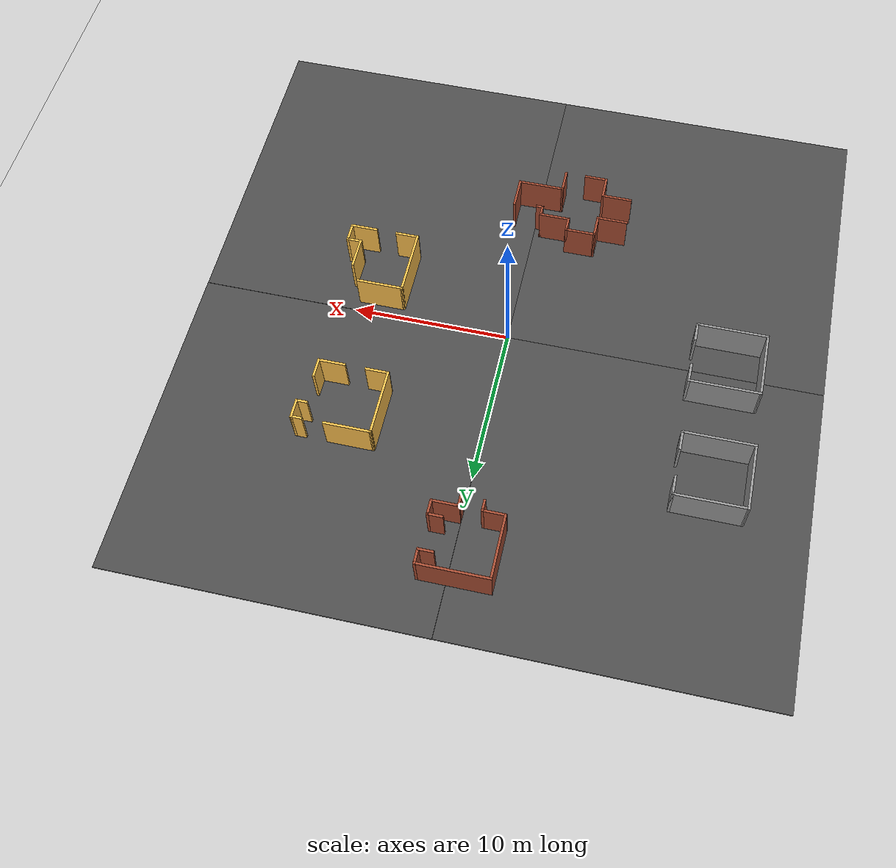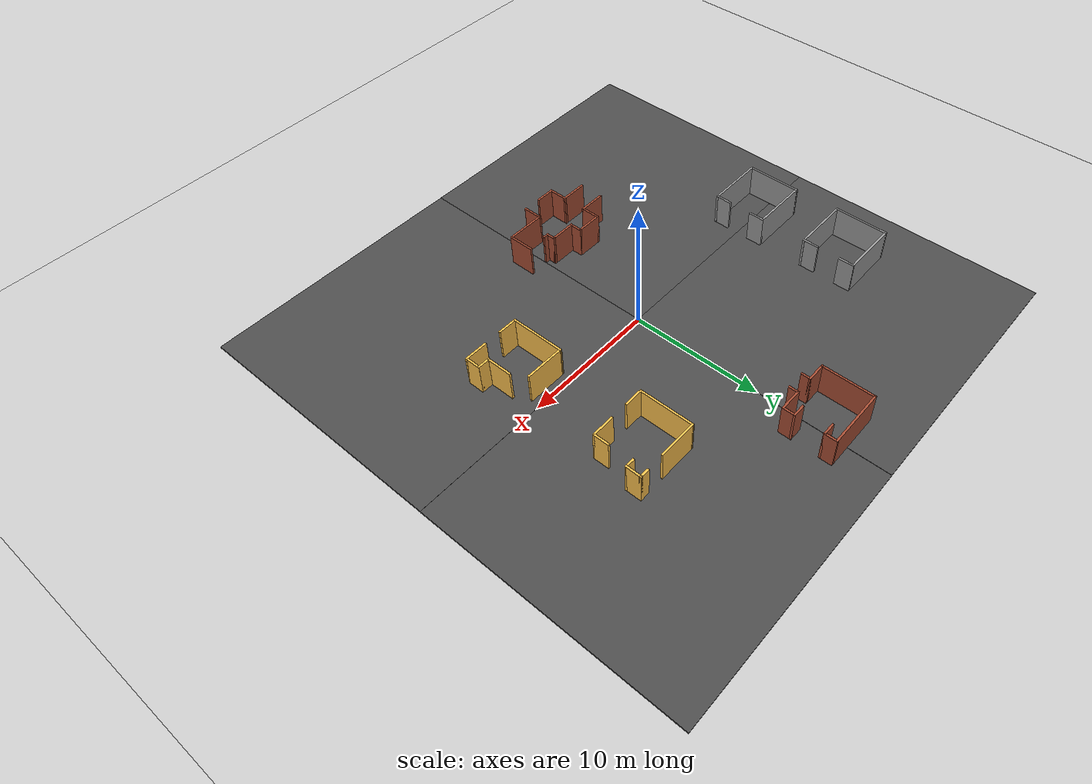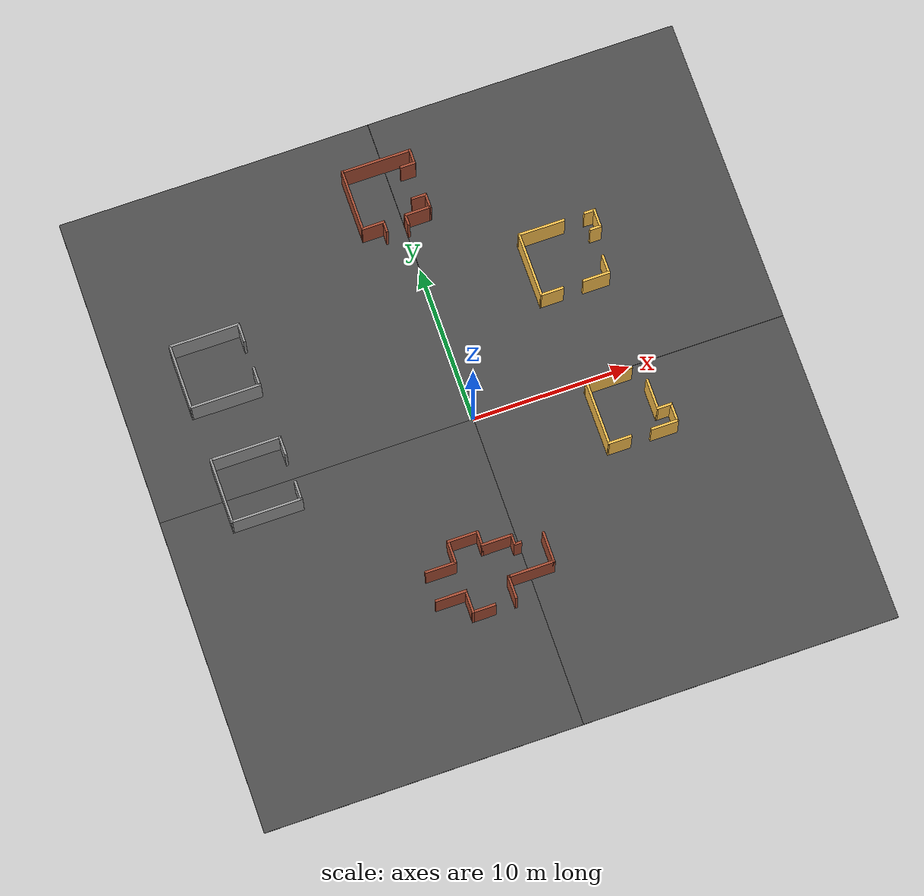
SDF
<sdf version="1.7">
 <world name="test_world">
  <light name="sun" type="directional">
   <pose>0 0 10 0 -0 0</pose>
   <diffuse>0.8 0.8 0.8 1</diffuse>
   <specular>0.2 0.2 0.2 1</specular>
   <attenuation>
    <range>1000</range>
    <constant>0.9</constant>
    <linear>0.01</linear>
    <quadratic>0.001</quadratic>
   </attenuation>
   <direction>-0.5 0.1 -0.9</direction>
   <spot><inner_angle>0</inner_angle><outer_angle>0</outer_angle><falloff>0</falloff></spot>
  </light>
  <model name="ground_plane">
   <static>1</static>
   <link name="link">
    <collision name="collision">
     <geometry><plane><normal>0 0 1</normal><size>100 100</size></plane></geometry>
     <surface>
      <contact><collide_bitmask>65535</collide_bitmask></contact>
      <friction><ode><mu>100</mu><mu2>50</mu2></ode></friction>
     </surface>
    </collision>
    <visual name="visual">
     <cast_shadows>0</cast_shadows>
     <geometry><plane><normal>0 0 1</normal><size>100 100</size></plane></geometry>
     <material>
      <script><uri>file://media/materials/scripts/gazebo.material</uri><name>Gazebo/Grey</name></script>
     </material>
    </visual>
   </link>
  </model>
  <gravity>0 0 -9.8</gravity>
  <magnetic_field>6e-06 2.3e-05 -4.2e-05</magnetic_field>
  <atmosphere type="adiabatic"/>
  <physics type="ode">
   <max_step_size>0.001</max_step_size>
   <real_time_factor>1</real_time_factor>
   <real_time_update_rate>1000</real_time_update_rate>
  </physics>
  <scene><ambient>0.4 0.4 0.4 1</ambient><background>0.7 0.7 0.7 1</background><shadows>1</shadows></scene>
  <spherical_coordinates>
   <surface_model>EARTH_WGS84</surface_model>
   <latitude_deg>0</latitude_deg>
   <longitude_deg>0</longitude_deg>
   <elevation>0</elevation>
   <heading_deg>0</heading_deg>
  </spherical_coordinates>
  <model name="asphalt_plane">
   <static>1</static>
   <link name="link">
    <collision name="collision"><geometry><box><size>20 20 0.1</size></box></geometry></collision>
    <visual name="visual">
     <cast_shadows>0</cast_shadows>
     <geometry><box><size>20 20 0.1</size></box></geometry>
     <material>
      <script>
       <uri>model://asphalt_plane/materials/scripts</uri>
       <uri>model://asphalt_plane/materials/textures</uri>
       <name>vrc/asphalt</name>
      </script>
     </material>
    </visual>
   </link>
   <pose>10.0094 10.0076 0 0 -0 0</pose>
  </model>
  <model name="asphalt_plane_clone">
   <static>1</static>
   <link name="link">
    <collision name="collision"><geometry><box><size>20 20 0.1</size></box></geometry></collision>
    <visual name="visual">
     <cast_shadows>0</cast_shadows>
     <geometry><box><size>20 20 0.1</size></box></geometry>
     <material>
      <script>
       <uri>model://asphalt_plane/materials/scripts</uri>
       <uri>model://asphalt_plane/materials/textures</uri>
       <name>vrc/asphalt</name>
      </script>
     </material>
    </visual>
   </link>
   <pose>10 -10 0 0 -0 0</pose>
  </model>
  <model name="asphalt_plane_clone_0">
   <static>1</static>
   <link name="link">
    <collision name="collision"><geometry><box><size>20 20 0.1</size></box></geometry></collision>
    <visual name="visual">
     <cast_shadows>0</cast_shadows>
     <geometry><box><size>20 20 0.1</size></box></geometry>
     <material>
      <script>
       <uri>model://asphalt_plane/materials/scripts</uri>
       <uri>model://asphalt_plane/materials/textures</uri>
       <name>vrc/asphalt</name>
      </script>
     </material>
    </visual>
   </link>
   <pose>-10 -10 0 0 -0 0</pose>
  </model>
  <model name="asphalt_plane_clone_1">
   <static>1</static>
   <link name="link">
    <collision name="collision"><geometry><box><size>20 20 0.1</size></box></geometry></collision>
    <visual name="visual">
     <cast_shadows>0</cast_shadows>
     <geometry><box><size>20 20 0.1</size></box></geometry>
     <material>
      <script>
       <uri>model://asphalt_plane/materials/scripts</uri>
       <uri>model://asphalt_plane/materials/textures</uri>
       <name>vrc/asphalt</name>
      </script>
     </material>
    </visual>
   </link>
   <pose>-10 10 0 0 -0 0</pose>
  </model>
  <model name="Test_building04">
   <pose>-2.29237 -9.62343 0 0 -0 0</pose>
   <link name="Wall_43">
    <collision name="Wall_43_Collision">
     <geometry><box><size>1.5 0.15 2.5</size></box></geometry>
     <pose>0 0 1.25 0 -0 0</pose>
    </collision>
    <visual name="Wall_43_Visual">
     <pose>0 0 1.25 0 -0 0</pose>
     <geometry><box><size>1.5 0.15 2.5</size></box></geometry>
     <material>
      <script><uri>file://media/materials/scripts/gazebo.material</uri><name>Gazebo/Bricks</name></script>
      <ambient>1 1 1 1</ambient>
     </material>
     <meta><layer>0</layer></meta>
    </visual>
    <pose>-1.175 -2.275 0 0 -0 0</pose>
   </link>
   <link name="Wall_45">
    <collision name="Wall_45_Collision">
     <geometry><box><size>1.5 0.15 2.5</size></box></geometry>
     <pose>0 0 1.25 0 -0 0</pose>
    </collision>
    <visual name="Wall_45_Visual">
     <pose>0 0 1.25 0 -0 0</pose>
     <geometry><box><size>1.5 0.15 2.5</size></box></geometry>
     <material>
      <script><uri>file://media/materials/scripts/gazebo.material</uri><name>Gazebo/Bricks</name></script>
      <ambient>1 1 1 1</ambient>
     </material>
     <meta><layer>0</layer></meta>
    </visual>
    <pose>-1.85 -1.6 0 0 -0 1.5708</pose>
   </link>
   <link name="Wall_47">
    <collision name="Wall_47_Collision">
     <geometry><box><size>1.5 0.15 2.5</size></box></geometry>
     <pose>0 0 1.25 0 -0 0</pose>
    </collision>
    <visual name="Wall_47_Visual">
     <pose>0 0 1.25 0 -0 0</pose>
     <geometry><box><size>1.5 0.15 2.5</size></box></geometry>
     <material>
      <script><uri>file://media/materials/scripts/gazebo.material</uri><name>Gazebo/Bricks</name></script>
      <ambient>1 1 1 1</ambient>
     </material>
     <meta><layer>0</layer></meta>
    </visual>
    <pose>-1.85 1.6 0 0 -0 1.5708</pose>
   </link>
   <link name="Wall_48">
    <collision name="Wall_48_Collision">
     <geometry><box><size>2 0.15 2.5</size></box></geometry>
     <pose>0 0 1.25 0 -0 0</pose>
    </collision>
    <visual name="Wall_48_Visual">
     <pose>0 0 1.25 0 -0 0</pose>
     <geometry><box><size>2 0.15 2.5</size></box></geometry>
     <material>
      <script><uri>file://media/materials/scripts/gazebo.material</uri><name>Gazebo/Bricks</name></script>
      <ambient>1 1 1 1</ambient>
     </material>
     <meta><layer>0</layer></meta>
    </visual>
    <pose>-0.925 2.275 0 0 -0 0</pose>
   </link>
   <link name="Wall_49">
    <collision name="Wall_49_Collision">
     <geometry><box><size>1 0.15 2.5</size></box></geometry>
     <pose>0 0 1.25 0 -0 0</pose>
    </collision>
    <visual name="Wall_49_Visual">
     <pose>0 0 1.25 0 -0 0</pose>
     <geometry><box><size>1 0.15 2.5</size></box></geometry>
     <material>
      <script><uri>file://media/materials/scripts/gazebo.material</uri><name>Gazebo/Bricks</name></script>
      <ambient>1 1 1 1</ambient>
     </material>
     <meta><layer>0</layer></meta>
    </visual>
    <pose>-0 1.85 0 0 -0 -1.5708</pose>
   </link>
   <link name="Wall_51">
    <collision name="Wall_51_Collision">
     <geometry><box><size>0.75 0.15 2.5</size></box></geometry>
     <pose>0 0 1.25 0 -0 0</pose>
    </collision>
    <visual name="Wall_51_Visual">
     <pose>0 0 1.25 0 -0 0</pose>
     <geometry><box><size>0.75 0.15 2.5</size></box></geometry>
     <material>
      <script><uri>file://media/materials/scripts/gazebo.material</uri><name>Gazebo/Bricks</name></script>
      <ambient>1 1 1 1</ambient>
     </material>
     <meta><layer>0</layer></meta>
    </visual>
    <pose>1.85 1.125 0 0 -0 -1.5708</pose>
   </link>
   <link name="Wall_54">
    <collision name="Wall_54_Collision">
     <geometry><box><size>1.5 0.15 2.5</size></box></geometry>
     <pose>0 0 1.25 0 -0 0</pose>
    </collision>
    <visual name="Wall_54_Visual">
     <pose>0 0 1.25 0 -0 0</pose>
     <geometry><box><size>1.5 0.15 2.5</size></box></geometry>
     <material>
      <script><uri>file://media/materials/scripts/gazebo.material</uri><name>Gazebo/Bricks</name></script>
      <ambient>1 1 1 1</ambient>
     </material>
     <meta><layer>0</layer></meta>
    </visual>
    <pose>0.85 -1.6 0 0 -0 1.5708</pose>
   </link>
   <link name="Wall_55">
    <collision name="Wall_55_Collision">
     <geometry><box><size>3 0.15 2.5</size></box></geometry>
     <pose>0 0 1.25 0 -0 0</pose>
    </collision>
    <visual name="Wall_55_Visual">
     <pose>0 0 1.25 0 -0 0</pose>
     <geometry><box><size>3 0.15 2.5</size></box></geometry>
     <material>
      <script><uri>file://media/materials/scripts/gazebo.material</uri><name>Gazebo/Bricks</name></script>
      <ambient>1 1 1 1</ambient>
     </material>
     <meta><layer>0</layer></meta>
    </visual>
    <pose>2.275 -0.925 0 0 -0 0</pose>
   </link>
   <link name="Wall_56">
    <collision name="Wall_56_Collision">
     <geometry><box><size>2 0.15 2.5</size></box></geometry>
     <pose>0 0 1.25 0 -0 0</pose>
    </collision>
    <visual name="Wall_56_Visual">
     <pose>0 0 1.25 0 -0 0</pose>
     <geometry><box><size>2 0.15 2.5</size></box></geometry>
     <material>
      <script><uri>file://media/materials/scripts/gazebo.material</uri><name>Gazebo/Bricks</name></script>
      <ambient>1 1 1 1</ambient>
     </material>
     <meta><layer>0</layer></meta>
    </visual>
    <pose>3.7 0 0 0 -0 1.5708</pose>
   </link>
   <link name="Wall_58">
    <collision name="Wall_58_Collision">
     <geometry><box><size>2 0.15 2.5</size></box></geometry>
     <pose>0 0 1.25 0 -0 0</pose>
    </collision>
    <visual name="Wall_58_Visual">
     <pose>0 0 1.25 0 -0 0</pose>
     <geometry><box><size>2 0.15 2.5</size></box></geometry>
     <material>
      <script><uri>file://media/materials/scripts/gazebo.material</uri><name>Gazebo/Bricks</name></script>
      <ambient>1 1 1 1</ambient>
     </material>
     <meta><layer>0</layer></meta>
    </visual>
    <pose>0.925 1.425 0 0 -0 0</pose>
   </link>
   <link name="Wall_60">
    <collision name="Wall_60_Collision">
     <geometry><box><size>0.5 0.15 2.5</size></box></geometry>
     <pose>0 0 1.25 0 -0 0</pose>
    </collision>
    <visual name="Wall_60_Visual">
     <pose>0 0 1.25 0 -0 0</pose>
     <geometry><box><size>0.5 0.15 2.5</size></box></geometry>
     <material>
      <script><uri>file://media/materials/scripts/gazebo.material</uri><name>Gazebo/Bricks</name></script>
      <ambient>1 1 1 1</ambient>
     </material>
     <meta><layer>0</layer></meta>
    </visual>
    <pose>2.025 0.825 0 0 -0 0</pose>
   </link>
   <link name="Wall_62">
    <collision name="Wall_62_Collision">
     <geometry><box><size>2 0.15 2.5</size></box></geometry>
     <pose>0 0 1.25 0 -0 0</pose>
    </collision>
    <visual name="Wall_62_Visual">
     <pose>0 0 1.25 0 -0 0</pose>
     <geometry><box><size>2 0.15 2.5</size></box></geometry>
     <material>
      <script><uri>file://media/materials/scripts/gazebo.material</uri><name>Gazebo/Bricks</name></script>
      <ambient>1 1 1 1</ambient>
     </material>
     <meta><layer>0</layer></meta>
    </visual>
    <pose>-2.775 0.925 0 0 -0 3.14159</pose>
   </link>
   <link name="Wall_64">
    <collision name="Wall_64_Collision">
     <geometry><box><size>2 0.15 2.5</size></box></geometry>
     <pose>0 0 1.25 0 -0 0</pose>
    </collision>
    <visual name="Wall_64_Visual">
     <pose>0 0 1.25 0 -0 0</pose>
     <geometry><box><size>2 0.15 2.5</size></box></geometry>
     <material>
      <script><uri>file://media/materials/scripts/gazebo.material</uri><name>Gazebo/Bricks</name></script>
      <ambient>1 1 1 1</ambient>
     </material>
     <meta><layer>0</layer></meta>
    </visual>
    <pose>-2.775 -0.925 0 0 -0 3.14159</pose>
   </link>
   <static>1</static>
  </model>
  <model name="Test_building00">
   <pose>-13.3894 7.60251 0 0 -0 0</pose>
   <link name="Wall_10">
    <collision name="Wall_10_Collision">
     <geometry><box><size>0.16 0.15 2.5</size></box></geometry>
     <pose>0 0 1.25 0 -0 0</pose>
    </collision>
    <visual name="Wall_10_Visual">
     <pose>0 0 1.25 0 -0 0</pose>
     <geometry><box><size>0.16 0.15 2.5</size></box></geometry>
     <material>
      <script><uri>file://media/materials/scripts/gazebo.material</uri><name>Gazebo/Grey</name></script>
      <ambient>1 1 1 1</ambient>
     </material>
     <meta><layer>0</layer></meta>
    </visual>
    <pose>1.69422 -2.025 0 0 -0 0</pose>
   </link>
   <link name="Wall_11">
    <collision name="Wall_11_Collision">
     <geometry><box><size>4.5 0.15 2.5</size></box></geometry>
     <pose>0 0 1.25 0 -0 0</pose>
    </collision>
    <visual name="Wall_11_Visual">
     <pose>0 0 1.25 0 -0 0</pose>
     <geometry><box><size>4.5 0.15 2.5</size></box></geometry>
     <material>
      <script><uri>file://media/materials/scripts/gazebo.material</uri><name>Gazebo/Grey</name></script>
      <ambient>1 1 1 1</ambient>
     </material>
     <meta><layer>0</layer></meta>
    </visual>
    <pose>-0.475782 -2.025 0 0 -0 3.14159</pose>
   </link>
   <link name="Wall_12">
    <collision name="Wall_12_Collision">
     <geometry><box><size>4.20001 0.15 2.5</size></box></geometry>
     <pose>0 0 1.25 0 -0 0</pose>
    </collision>
    <visual name="Wall_12_Visual">
     <pose>0 0 1.25 0 -0 0</pose>
     <geometry><box><size>4.20001 0.15 2.5</size></box></geometry>
     <material>
      <script><uri>file://media/materials/scripts/gazebo.material</uri><name>Gazebo/Grey</name></script>
      <ambient>1 1 1 1</ambient>
     </material>
     <meta><layer>0</layer></meta>
    </visual>
    <pose>-2.65578 -0 0 0 -0 1.57326</pose>
   </link>
   <link name="Wall_5">
    <collision name="Wall_5_Collision">
     <geometry><box><size>4.5 0.15 2.5</size></box></geometry>
     <pose>0 0 1.25 0 -0 0</pose>
    </collision>
    <visual name="Wall_5_Visual">
     <pose>0 0 1.25 0 -0 0</pose>
     <geometry><box><size>4.5 0.15 2.5</size></box></geometry>
     <material>
      <script><uri>file://media/materials/scripts/gazebo.material</uri><name>Gazebo/Grey</name></script>
      <ambient>1 1 1 1</ambient>
     </material>
     <meta><layer>0</layer></meta>
    </visual>
    <pose>-0.485782 2.025 0 0 -0 0</pose>
   </link>
   <link name="Wall_6">
    <collision name="Wall_6_Collision">
     <geometry><box><size>1.25 0.15 2.5</size></box></geometry>
     <pose>0 0 1.25 0 -0 0</pose>
    </collision>
    <visual name="Wall_6_Visual">
     <pose>0 0 1.25 0 -0 0</pose>
     <geometry><box><size>1.25 0.15 2.5</size></box></geometry>
     <material>
      <script><uri>file://media/materials/scripts/gazebo.material</uri><name>Gazebo/Grey</name></script>
      <ambient>1 1 1 1</ambient>
     </material>
     <meta><layer>0</layer></meta>
    </visual>
    <pose>1.68922 1.475 0 0 -0 -1.5708</pose>
   </link>
   <link name="Wall_9">
    <collision name="Wall_9_Collision">
     <geometry><box><size>1.25 0.15 2.5</size></box></geometry>
     <pose>0 0 1.25 0 -0 0</pose>
    </collision>
    <visual name="Wall_9_Visual">
     <pose>0 0 1.25 0 -0 0</pose>
     <geometry><box><size>1.25 0.15 2.5</size></box></geometry>
     <material>
      <script><uri>file://media/materials/scripts/gazebo.material</uri><name>Gazebo/Grey</name></script>
      <ambient>1 1 1 1</ambient>
     </material>
     <meta><layer>0</layer></meta>
    </visual>
    <pose>1.68922 -1.475 0 0 -0 -1.5708</pose>
   </link>
   <static>1</static>
  </model>
  <model name="Test_building00_0">
   <pose>-13.2702 0.050698 0 0 -0 0</pose>
   <link name="Wall_10">
    <collision name="Wall_10_Collision">
     <geometry><box><size>0.16 0.15 2.5</size></box></geometry>
     <pose>0 0 1.25 0 -0 0</pose>
    </collision>
    <visual name="Wall_10_Visual">
     <pose>0 0 1.25 0 -0 0</pose>
     <geometry><box><size>0.16 0.15 2.5</size></box></geometry>
     <material>
      <script><uri>file://media/materials/scripts/gazebo.material</uri><name>Gazebo/Grey</name></script>
      <ambient>1 1 1 1</ambient>
     </material>
     <meta><layer>0</layer></meta>
    </visual>
    <pose>1.69422 -2.025 0 0 -0 0</pose>
   </link>
   <link name="Wall_11">
    <collision name="Wall_11_Collision">
     <geometry><box><size>4.5 0.15 2.5</size></box></geometry>
     <pose>0 0 1.25 0 -0 0</pose>
    </collision>
    <visual name="Wall_11_Visual">
     <pose>0 0 1.25 0 -0 0</pose>
     <geometry><box><size>4.5 0.15 2.5</size></box></geometry>
     <material>
      <script><uri>file://media/materials/scripts/gazebo.material</uri><name>Gazebo/Grey</name></script>
      <ambient>1 1 1 1</ambient>
     </material>
     <meta><layer>0</layer></meta>
    </visual>
    <pose>-0.475782 -2.025 0 0 -0 3.14159</pose>
   </link>
   <link name="Wall_12">
    <collision name="Wall_12_Collision">
     <geometry><box><size>4.20001 0.15 2.5</size></box></geometry>
     <pose>0 0 1.25 0 -0 0</pose>
    </collision>
    <visual name="Wall_12_Visual">
     <pose>0 0 1.25 0 -0 0</pose>
     <geometry><box><size>4.20001 0.15 2.5</size></box></geometry>
     <material>
      <script><uri>file://media/materials/scripts/gazebo.material</uri><name>Gazebo/Grey</name></script>
      <ambient>1 1 1 1</ambient>
     </material>
     <meta><layer>0</layer></meta>
    </visual>
    <pose>-2.65578 -0 0 0 -0 1.57326</pose>
   </link>
   <link name="Wall_5">
    <collision name="Wall_5_Collision">
     <geometry><box><size>4.5 0.15 2.5</size></box></geometry>
     <pose>0 0 1.25 0 -0 0</pose>
    </collision>
    <visual name="Wall_5_Visual">
     <pose>0 0 1.25 0 -0 0</pose>
     <geometry><box><size>4.5 0.15 2.5</size></box></geometry>
     <material>
      <script><uri>file://media/materials/scripts/gazebo.material</uri><name>Gazebo/Grey</name></script>
      <ambient>1 1 1 1</ambient>
     </material>
     <meta><layer>0</layer></meta>
    </visual>
    <pose>-0.485782 2.025 0 0 -0 0</pose>
   </link>
   <link name="Wall_6">
    <collision name="Wall_6_Collision">
     <geometry><box><size>1.25 0.15 2.5</size></box></geometry>
     <pose>0 0 1.25 0 -0 0</pose>
    </collision>
    <visual name="Wall_6_Visual">
     <pose>0 0 1.25 0 -0 0</pose>
     <geometry><box><size>1.25 0.15 2.5</size></box></geometry>
     <material>
      <script><uri>file://media/materials/scripts/gazebo.material</uri><name>Gazebo/Grey</name></script>
      <ambient>1 1 1 1</ambient>
     </material>
     <meta><layer>0</layer></meta>
    </visual>
    <pose>1.68922 1.475 0 0 -0 -1.5708</pose>
   </link>
   <link name="Wall_9">
    <collision name="Wall_9_Collision">
     <geometry><box><size>1.25 0.15 2.5</size></box></geometry>
     <pose>0 0 1.25 0 -0 0</pose>
    </collision>
    <visual name="Wall_9_Visual">
     <pose>0 0 1.25 0 -0 0</pose>
     <geometry><box><size>1.25 0.15 2.5</size></box></geometry>
     <material>
      <script><uri>file://media/materials/scripts/gazebo.material</uri><name>Gazebo/Grey</name></script>
      <ambient>1 1 1 1</ambient>
     </material>
     <meta><layer>0</layer></meta>
    </visual>
    <pose>1.68922 -1.475 0 0 -0 -1.5708</pose>
   </link>
   <static>1</static>
  </model>
  <model name="Test_building03">
   <pose>-0.007442 14.5328 0 0 -0 0</pose>
   <link name="Wall_12">
    <collision name="Wall_12_Collision">
     <geometry><box><size>4 0.15 2.5</size></box></geometry>
     <pose>0 0 1.25 0 -0 0</pose>
    </collision>
    <visual name="Wall_12_Visual">
     <pose>0 0 1.25 0 -0 0</pose>
     <geometry><box><size>4 0.15 2.5</size></box></geometry>
     <material>
      <script><uri>file://media/materials/scripts/gazebo.material</uri><name>Gazebo/Bricks</name></script>
      <ambient>1 0.764706 0.305882 1</ambient>
     </material>
     <meta><layer>0</layer></meta>
    </visual>
    <pose>-2.65587 0.3 0 0 -0 1.5708</pose>
   </link>
   <link name="Wall_14">
    <collision name="Wall_14_Collision">
     <geometry><box><size>1.5 0.15 2.5</size></box></geometry>
     <pose>0 0 1.25 0 -0 0</pose>
    </collision>
    <visual name="Wall_14_Visual">
     <pose>0 0 1.25 0 -0 0</pose>
     <geometry><box><size>1.5 0.15 2.5</size></box></geometry>
     <material>
      <script><uri>file://media/materials/scripts/gazebo.material</uri><name>Gazebo/Bricks</name></script>
      <ambient>1 0.764706 0.305882 1</ambient>
     </material>
     <meta><layer>0</layer></meta>
    </visual>
    <pose>-1.98087 -1.625 0 0 -0 0</pose>
   </link>
   <link name="Wall_18">
    <collision name="Wall_18_Collision">
     <geometry><box><size>1.75 0.15 2.5</size></box></geometry>
     <pose>0 0 1.25 0 -0 0</pose>
    </collision>
    <visual name="Wall_18_Visual">
     <pose>0 0 1.25 0 -0 0</pose>
     <geometry><box><size>1.75 0.15 2.5</size></box></geometry>
     <material>
      <script><uri>file://media/materials/scripts/gazebo.material</uri><name>Gazebo/Bricks</name></script>
      <ambient>1 0.764706 0.305882 1</ambient>
     </material>
     <meta><layer>0</layer></meta>
    </visual>
    <pose>0.884126 -1.625 0 0 -0 3.14159</pose>
   </link>
   <link name="Wall_24">
    <collision name="Wall_24_Collision">
     <geometry><box><size>4.5 0.15 2.5</size></box></geometry>
     <pose>0 0 1.25 0 -0 0</pose>
    </collision>
    <visual name="Wall_24_Visual">
     <pose>0 0 1.25 0 -0 0</pose>
     <geometry><box><size>4.5 0.15 2.5</size></box></geometry>
     <material>
      <script><uri>file://media/materials/scripts/gazebo.material</uri><name>Gazebo/Bricks</name></script>
      <ambient>1 0.764706 0.305882 1</ambient>
     </material>
     <meta><layer>0</layer></meta>
    </visual>
    <pose>-0.480874 2.225 0 0 -0 3.14159</pose>
   </link>
   <link name="Wall_31">
    <collision name="Wall_31_Collision">
     <geometry><box><size>1 0.15 2.5</size></box></geometry>
     <pose>0 0 1.25 0 -0 0</pose>
    </collision>
    <visual name="Wall_31_Visual">
     <pose>0 0 1.25 0 -0 0</pose>
     <geometry><box><size>1 0.15 2.5</size></box></geometry>
     <material>
      <script><uri>file://media/materials/scripts/gazebo.material</uri><name>Gazebo/Bricks</name></script>
      <ambient>1 0.764706 0.305882 1</ambient>
     </material>
     <meta><layer>0</layer></meta>
    </visual>
    <pose>1.69413 1.8 0 0 -0 -1.5708</pose>
   </link>
   <link name="Wall_32">
    <collision name="Wall_32_Collision">
     <geometry><box><size>1 0.15 2.5</size></box></geometry>
     <pose>0 0 1.25 0 -0 0</pose>
    </collision>
    <visual name="Wall_32_Visual">
     <pose>0 0 1.25 0 -0 0</pose>
     <geometry><box><size>1 0.15 2.5</size></box></geometry>
     <material>
      <script><uri>file://media/materials/scripts/gazebo.material</uri><name>Gazebo/Bricks</name></script>
      <ambient>1 0.764706 0.305882 1</ambient>
     </material>
     <meta><layer>0</layer></meta>
    </visual>
    <pose>1.26913 1.375 0 0 -0 3.14159</pose>
   </link>
   <link name="Wall_35">
    <collision name="Wall_35_Collision">
     <geometry><box><size>1 0.15 2.5</size></box></geometry>
     <pose>0 0 1.25 0 -0 0</pose>
    </collision>
    <visual name="Wall_35_Visual">
     <pose>0 0 1.25 0 -0 0</pose>
     <geometry><box><size>1 0.15 2.5</size></box></geometry>
     <material>
      <script><uri>file://media/materials/scripts/gazebo.material</uri><name>Gazebo/Bricks</name></script>
      <ambient>1 0.764706 0.305882 1</ambient>
     </material>
     <meta><layer>0</layer></meta>
    </visual>
    <pose>1.68413 -1.2 0 0 -0 1.5708</pose>
   </link>
   <link name="Wall_36">
    <collision name="Wall_36_Collision">
     <geometry><box><size>1 0.15 2.5</size></box></geometry>
     <pose>0 0 1.25 0 -0 0</pose>
    </collision>
    <visual name="Wall_36_Visual">
     <pose>0 0 1.25 0 -0 0</pose>
     <geometry><box><size>1 0.15 2.5</size></box></geometry>
     <material>
      <script><uri>file://media/materials/scripts/gazebo.material</uri><name>Gazebo/Bricks</name></script>
      <ambient>1 0.764706 0.305882 1</ambient>
     </material>
     <meta><layer>0</layer></meta>
    </visual>
    <pose>1.25913 -0.775 0 0 -0 3.14159</pose>
   </link>
   <link name="Wall_38">
    <collision name="Wall_38_Collision">
     <geometry><box><size>0.75 0.15 2.5</size></box></geometry>
     <pose>0 0 1.25 0 -0 0</pose>
    </collision>
    <visual name="Wall_38_Visual">
     <pose>0 0 1.25 0 -0 0</pose>
     <geometry><box><size>0.75 0.15 2.5</size></box></geometry>
     <material>
      <script><uri>file://media/materials/scripts/gazebo.material</uri><name>Gazebo/Bricks</name></script>
      <ambient>1 0.764706 0.305882 1</ambient>
     </material>
     <meta><layer>0</layer></meta>
    </visual>
    <pose>0.084126 -1.925 0 0 -0 -1.5708</pose>
   </link>
   <link name="Wall_40">
    <collision name="Wall_40_Collision">
     <geometry><box><size>0.75 0.15 2.5</size></box></geometry>
     <pose>0 0 1.25 0 -0 0</pose>
    </collision>
    <visual name="Wall_40_Visual">
     <pose>0 0 1.25 0 -0 0</pose>
     <geometry><box><size>0.75 0.15 2.5</size></box></geometry>
     <material>
      <script><uri>file://media/materials/scripts/gazebo.material</uri><name>Gazebo/Bricks</name></script>
      <ambient>1 0.764706 0.305882 1</ambient>
     </material>
     <meta><layer>0</layer></meta>
    </visual>
    <pose>-1.30587 -1.925 0 0 -0 -1.5708</pose>
   </link>
   <static>1</static>
  </model>
  <model name="Test_building01">
   <pose>8.86965 7.41175 0 0 -0 0</pose>
   <link name="Wall_12">
    <collision name="Wall_12_Collision">
     <geometry><box><size>4.20001 0.15 2.5</size></box></geometry>
     <pose>0 0 1.25 0 -0 0</pose>
    </collision>
    <visual name="Wall_12_Visual">
     <pose>0 0 1.25 0 -0 0</pose>
     <geometry><box><size>4.20001 0.15 2.5</size></box></geometry>
     <material>
      <script><uri>file://media/materials/scripts/gazebo.material</uri><name>Gazebo/Grey</name></script>
      <ambient>1 0.764706 0.305882 1</ambient>
     </material>
     <meta><layer>0</layer></meta>
    </visual>
    <pose>-2.65578 -0 0 0 -0 1.57326</pose>
   </link>
   <link name="Wall_14">
    <collision name="Wall_14_Collision">
     <geometry><box><size>1.5 0.15 2.5</size></box></geometry>
     <pose>0 0 1.25 0 -0 0</pose>
    </collision>
    <visual name="Wall_14_Visual">
     <pose>0 0 1.25 0 -0 0</pose>
     <geometry><box><size>1.5 0.15 2.5</size></box></geometry>
     <material>
      <script><uri>file://media/materials/scripts/gazebo.material</uri><name>Gazebo/Grey</name></script>
      <ambient>1 0.764706 0.305882 1</ambient>
     </material>
     <meta><layer>0</layer></meta>
    </visual>
    <pose>-1.97578 -2.025 0 0 -0 0</pose>
   </link>
   <link name="Wall_18">
    <collision name="Wall_18_Collision">
     <geometry><box><size>1.75 0.15 2.5</size></box></geometry>
     <pose>0 0 1.25 0 -0 0</pose>
    </collision>
    <visual name="Wall_18_Visual">
     <pose>0 0 1.25 0 -0 0</pose>
     <geometry><box><size>1.75 0.15 2.5</size></box></geometry>
     <material>
      <script><uri>file://media/materials/scripts/gazebo.material</uri><name>Gazebo/Grey</name></script>
      <ambient>1 0.764706 0.305882 1</ambient>
     </material>
     <meta><layer>0</layer></meta>
    </visual>
    <pose>0.889218 -2.025 0 0 -0 3.14159</pose>
   </link>
   <link name="Wall_20">
    <collision name="Wall_20_Collision">
     <geometry><box><size>0.75 0.15 2.5</size></box></geometry>
     <pose>0 0 1.25 0 -0 0</pose>
    </collision>
    <visual name="Wall_20_Visual">
     <pose>0 0 1.25 0 -0 0</pose>
     <geometry><box><size>0.75 0.15 2.5</size></box></geometry>
     <material>
      <script><uri>file://media/materials/scripts/gazebo.material</uri><name>Gazebo/Grey</name></script>
      <ambient>1 0.764706 0.305882 1</ambient>
     </material>
     <meta><layer>0</layer></meta>
    </visual>
    <pose>1.88922 0.925 0 0 -0 3.14159</pose>
   </link>
   <link name="Wall_22">
    <collision name="Wall_22_Collision">
     <geometry><box><size>0.75 0.15 2.5</size></box></geometry>
     <pose>0 0 1.25 0 -0 0</pose>
    </collision>
    <visual name="Wall_22_Visual">
     <pose>0 0 1.25 0 -0 0</pose>
     <geometry><box><size>0.75 0.15 2.5</size></box></geometry>
     <material>
      <script><uri>file://media/materials/scripts/gazebo.material</uri><name>Gazebo/Grey</name></script>
      <ambient>1 0.764706 0.305882 1</ambient>
     </material>
     <meta><layer>0</layer></meta>
    </visual>
    <pose>1.88922 2.025 0 0 -0 3.14159</pose>
   </link>
   <link name="Wall_24">
    <collision name="Wall_24_Collision">
     <geometry><box><size>3 0.15 2.5</size></box></geometry>
     <pose>0 0 1.25 0 -0 0</pose>
    </collision>
    <visual name="Wall_24_Visual">
     <pose>0 0 1.25 0 -0 0</pose>
     <geometry><box><size>3 0.15 2.5</size></box></geometry>
     <material>
      <script><uri>file://media/materials/scripts/gazebo.material</uri><name>Gazebo/Grey</name></script>
      <ambient>1 0.764706 0.305882 1</ambient>
     </material>
     <meta><layer>0</layer></meta>
    </visual>
    <pose>-1.23578 2.025 0 0 -0 3.14159</pose>
   </link>
   <link name="Wall_6">
    <collision name="Wall_6_Collision">
     <geometry><box><size>1.25 0.15 2.5</size></box></geometry>
     <pose>0 0 1.25 0 -0 0</pose>
    </collision>
    <visual name="Wall_6_Visual">
     <pose>0 0 1.25 0 -0 0</pose>
     <geometry><box><size>1.25 0.15 2.5</size></box></geometry>
     <material>
      <script><uri>file://media/materials/scripts/gazebo.material</uri><name>Gazebo/Grey</name></script>
      <ambient>1 0.764706 0.305882 1</ambient>
     </material>
     <meta><layer>0</layer></meta>
    </visual>
    <pose>2.18922 1.475 0 0 -0 -1.5708</pose>
   </link>
   <link name="Wall_9">
    <collision name="Wall_9_Collision">
     <geometry><box><size>1.25 0.15 2.5</size></box></geometry>
     <pose>0 0 1.25 0 -0 0</pose>
    </collision>
    <visual name="Wall_9_Visual">
     <pose>0 0 1.25 0 -0 0</pose>
     <geometry><box><size>1.25 0.15 2.5</size></box></geometry>
     <material>
      <script><uri>file://media/materials/scripts/gazebo.material</uri><name>Gazebo/Grey</name></script>
      <ambient>1 0.764706 0.305882 1</ambient>
     </material>
     <meta><layer>0</layer></meta>
    </visual>
    <pose>1.68922 -1.475 0 0 -0 -1.5708</pose>
   </link>
   <static>1</static>
  </model>
  <model name="Test_building02">
   <pose>9.61995 -2.73096 0 0 -0 0</pose>
   <link name="Wall_12">
    <collision name="Wall_12_Collision">
     <geometry><box><size>4.20001 0.15 2.5</size></box></geometry>
     <pose>0 0 1.25 0 -0 0</pose>
    </collision>
    <visual name="Wall_12_Visual">
     <pose>0 0 1.25 0 -0 0</pose>
     <geometry><box><size>4.20001 0.15 2.5</size></box></geometry>
     <material>
      <script><uri>file://media/materials/scripts/gazebo.material</uri><name>Gazebo/Grey</name></script>
      <ambient>1 0.764706 0.305882 1</ambient>
     </material>
     <meta><layer>0</layer></meta>
    </visual>
    <pose>-2.65578 -0 0 0 -0 1.57326</pose>
   </link>
   <link name="Wall_14">
    <collision name="Wall_14_Collision">
     <geometry><box><size>1.5 0.15 2.5</size></box></geometry>
     <pose>0 0 1.25 0 -0 0</pose>
    </collision>
    <visual name="Wall_14_Visual">
     <pose>0 0 1.25 0 -0 0</pose>
     <geometry><box><size>1.5 0.15 2.5</size></box></geometry>
     <material>
      <script><uri>file://media/materials/scripts/gazebo.material</uri><name>Gazebo/Grey</name></script>
      <ambient>1 0.764706 0.305882 1</ambient>
     </material>
     <meta><layer>0</layer></meta>
    </visual>
    <pose>-1.97578 -2.025 0 0 -0 0</pose>
   </link>
   <link name="Wall_18">
    <collision name="Wall_18_Collision">
     <geometry><box><size>1.75 0.15 2.5</size></box></geometry>
     <pose>0 0 1.25 0 -0 0</pose>
    </collision>
    <visual name="Wall_18_Visual">
     <pose>0 0 1.25 0 -0 0</pose>
     <geometry><box><size>1.75 0.15 2.5</size></box></geometry>
     <material>
      <script><uri>file://media/materials/scripts/gazebo.material</uri><name>Gazebo/Grey</name></script>
      <ambient>1 0.764706 0.305882 1</ambient>
     </material>
     <meta><layer>0</layer></meta>
    </visual>
    <pose>0.889218 -2.025 0 0 -0 3.14159</pose>
   </link>
   <link name="Wall_24">
    <collision name="Wall_24_Collision">
     <geometry><box><size>3 0.15 2.5</size></box></geometry>
     <pose>0 0 1.25 0 -0 0</pose>
    </collision>
    <visual name="Wall_24_Visual">
     <pose>0 0 1.25 0 -0 0</pose>
     <geometry><box><size>3 0.15 2.5</size></box></geometry>
     <material>
      <script><uri>file://media/materials/scripts/gazebo.material</uri><name>Gazebo/Grey</name></script>
      <ambient>1 0.764706 0.305882 1</ambient>
     </material>
     <meta><layer>0</layer></meta>
    </visual>
    <pose>-1.23578 2.025 0 0 -0 3.14159</pose>
   </link>
   <link name="Wall_26">
    <collision name="Wall_26_Collision">
     <geometry><box><size>1 0.15 2.5</size></box></geometry>
     <pose>0 0 1.25 0 -0 0</pose>
    </collision>
    <visual name="Wall_26_Visual">
     <pose>0 0 1.25 0 -0 0</pose>
     <geometry><box><size>1 0.15 2.5</size></box></geometry>
     <material>
      <script><uri>file://media/materials/scripts/gazebo.material</uri><name>Gazebo/Grey</name></script>
      <ambient>1 0.764706 0.305882 1</ambient>
     </material>
     <meta><layer>0</layer></meta>
    </visual>
    <pose>1.26422 -0.925 0 0 -0 3.14159</pose>
   </link>
   <link name="Wall_27">
    <collision name="Wall_27_Collision">
     <geometry><box><size>2 0.15 2.5</size></box></geometry>
     <pose>0 0 1.25 0 -0 0</pose>
    </collision>
    <visual name="Wall_27_Visual">
     <pose>0 0 1.25 0 -0 0</pose>
     <geometry><box><size>2 0.15 2.5</size></box></geometry>
     <material>
      <script><uri>file://media/materials/scripts/gazebo.material</uri><name>Gazebo/Grey</name></script>
      <ambient>1 0.764706 0.305882 1</ambient>
     </material>
     <meta><layer>0</layer></meta>
    </visual>
    <pose>0.839218 -0 0 0 -0 1.5708</pose>
   </link>
   <link name="Wall_9">
    <collision name="Wall_9_Collision">
     <geometry><box><size>1.25 0.15 2.5</size></box></geometry>
     <pose>0 0 1.25 0 -0 0</pose>
    </collision>
    <visual name="Wall_9_Visual">
     <pose>0 0 1.25 0 -0 0</pose>
     <geometry><box><size>1.25 0.15 2.5</size></box></geometry>
     <material>
      <script><uri>file://media/materials/scripts/gazebo.material</uri><name>Gazebo/Grey</name></script>
      <ambient>1 0.764706 0.305882 1</ambient>
     </material>
     <meta><layer>0</layer></meta>
    </visual>
    <pose>1.68922 -1.475 0 0 -0 -1.5708</pose>
   </link>
   <static>1</static>
  </model>
 </world>
</sdf>
